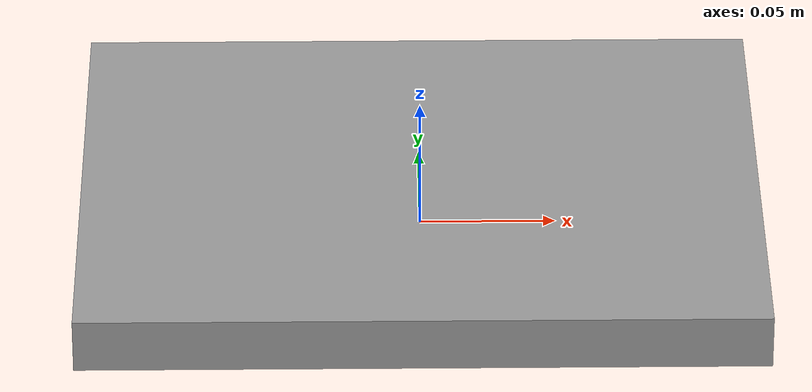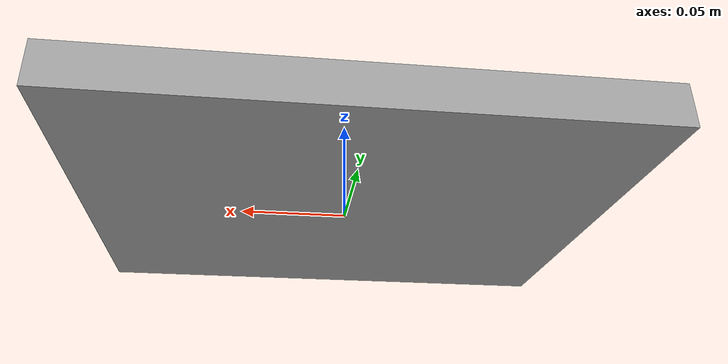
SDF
<?xml version='1.0'?>
<sdf version='1.6'>
  <model name='dropoff_station'>
    <static>true</static>
    <link name='link'>
      <pose>0 0 0.01 0 0 0</pose> <!-- Base at 0, top at 0.02 -->

      <!-- İnce Tepsi / Plaka -->
      <visual name='base_visual'>
        <geometry>
          <box>
            <size>0.25 0.20 0.02</size> <!-- A4 paper size approx -->
          </box>
        </geometry>
        <material>
          <script>
            <uri>file://media/materials/scripts/gazebo.material</uri>
            <name>Gazebo/Grey</name>
          </script>
        </material>
      </visual>
      <collision name='base_collision'>
        <geometry>
          <box>
            <size>0.25 0.20 0.02</size>
          </box>
        </geometry>
      </collision>

      <!-- Sensör (IR) - Embedded in tray looking up -->
      <sensor name='table_ir_sensor' type='ray'>
        <pose>0 0 0.02 0 -1.570796 0</pose> <!-- On surface -->
        <visualize>true</visualize>
        <update_rate>10</update_rate>
        <ray>
          <scan>
            <horizontal>
              <samples>5</samples>
              <resolution>1</resolution>
              <min_angle>-0.1</min_angle>
              <max_angle>0.1</max_angle>
            </horizontal>
          </scan>
          <range>
            <min>0.01</min>
            <max>0.3</max>
            <resolution>0.01</resolution>
          </range>
        </ray>
        <plugin name='ir_controller' filename='libgazebo_ros_laser.so'>
          <topicName>/dropoff_station/ir_sensor</topicName>
          <frameName>dropoff_station_link</frameName>
        </plugin>
      </sensor>

    </link>
  </model>
</sdf>
